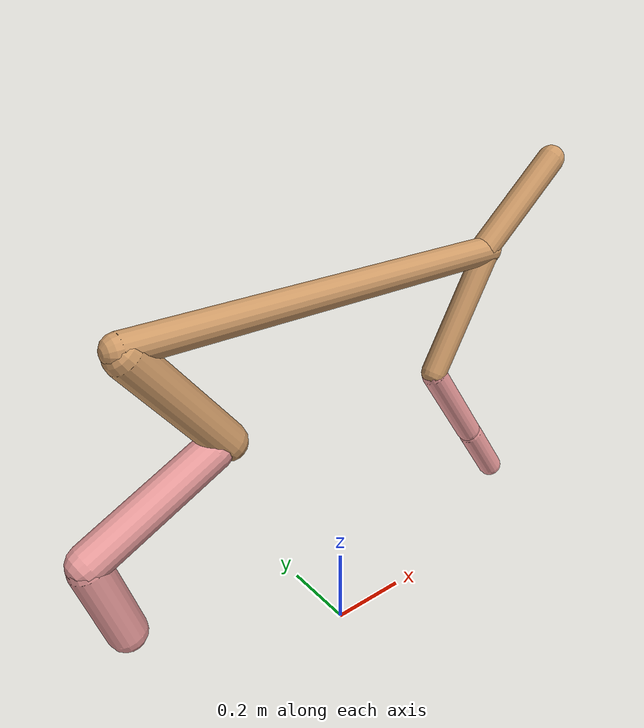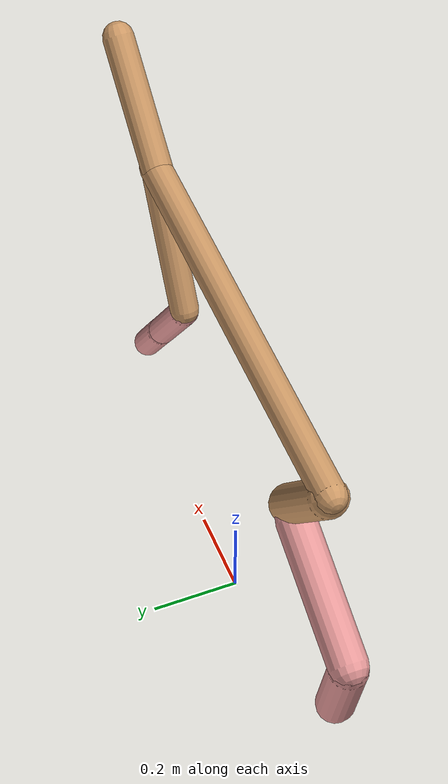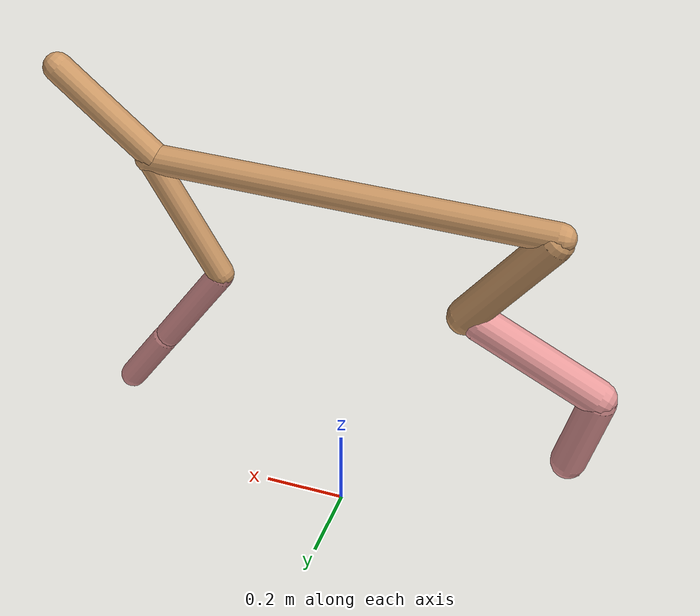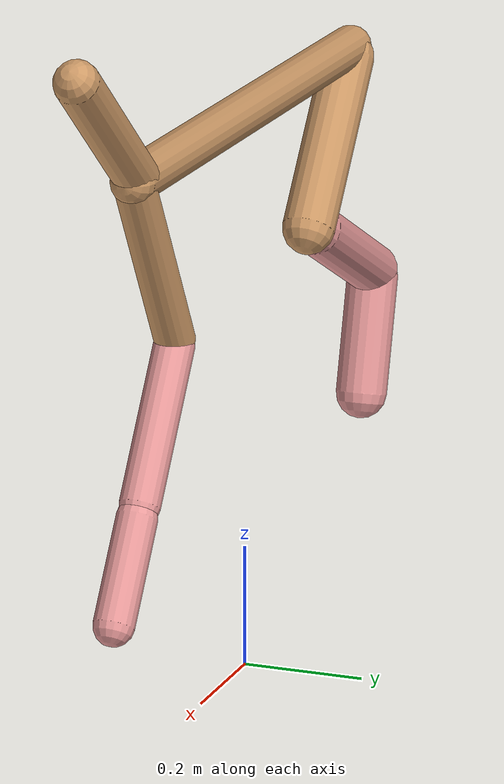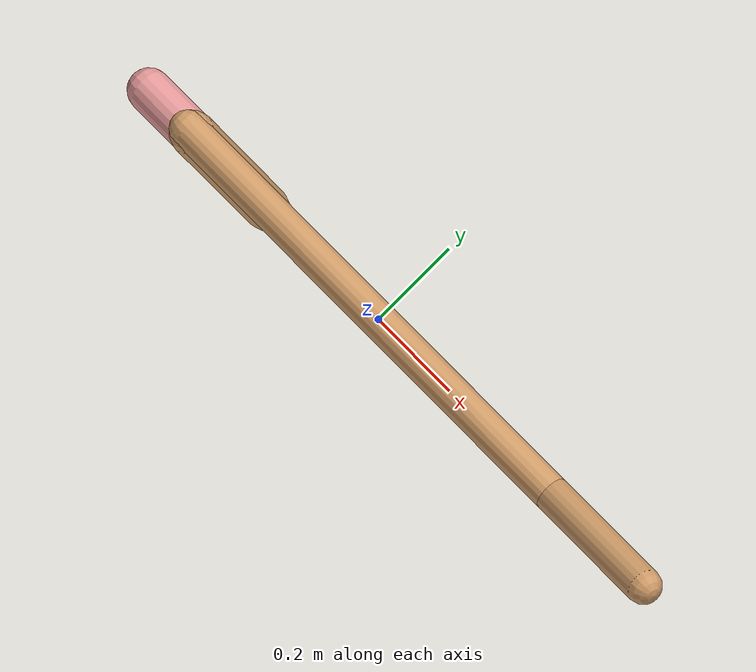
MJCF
<mujoco model="cheetah">
  <compiler angle="radian" coordinate="local" inertiafromgeom="true" settotalmass="14" />
  <default>
    <joint armature=".1" damping=".01" limited="true" solimplimit="0 .8 .03" solreflimit=".02 1" stiffness="8" />
    <geom conaffinity="0" condim="3" contype="1" friction="0.8 .1 .1" rgba="0.8 0.6 .4 1" solimp="0.0 0.8 0.01" solref="0.02 1" />
    <motor ctrllimited="true" ctrlrange="-1 1" />
  </default>
  <size nstack="300000" nuser_geom="1" />
  <option gravity="0 0 -9.81" timestep="0.01" />
  <worldbody>
    <body name="torso" pos="0.0 0.0 0.9187091342825178">
      <joint armature="0" axis="1 0 0" damping="0" limited="false" name="ignorex" pos="0 0 0" stiffness="0" type="slide" />
      <joint armature="0" axis="0 0 1" damping="0" limited="false" name="ignorez" pos="0 0 0" stiffness="0" type="slide" />
      <joint armature="0" axis="0 1 0" damping="0" limited="false" name="ignorey" pos="0 0 0" stiffness="0" type="hinge" />
      <geom fromto="-0.5 0.0 0.0 0.47290440926964916 0.0 0.0" name="torso" size="0.03501972096456425" type="capsule" />
      <geom axisangle="0 1 0 .87" name="head" pos="0.5729044092696491 0.0 0.1" size="0.034886265152725165 0.15" type="capsule" />

      <body name="bthigh" pos="-.5 0 0">
        <joint axis="0 1 0" damping="6" name="bthigh" pos="0 0 0" range="-.52 1.05" stiffness="240" type="hinge" />
        <geom axisangle="0 1 0 -3.8" name="bthigh" pos="0.1070548192652169 0.0 -0.13917126504478197" size="0.04345368770946915 0.15657076390678312" type="capsule" />
        <body name="bshin" pos="0.1741096385304338 0.0 -0.26834253008956394">
          <joint axis="0 1 0" damping="4.5" name="bshin" pos="0 0 0" range="-.785 .785" stiffness="180" type="hinge" />
          <geom axisangle="0 1 0 -2.03" name="bshin" pos="-0.1507060750264144 0.0 -0.0753530375132072" rgba="0.9 0.6 0.6 1" size="0.04345368770946915 0.1619697557656377" type="capsule" />
          <body name="bfoot" pos="-0.3014121500528288 0.0 -0.1507060750264144">
            <joint axis="0 1 0" damping="3" name="bfoot" pos="0 0 0" range="-.4 .785" stiffness="120" type="hinge" />
            <geom axisangle="0 1 0 -.27" name="bfoot" pos="0.032216332262897815 0.0 -0.10416614098336961" rgba="0.9 0.6 0.6 1" size="0.04345368770946915 0.1015010469464663" type="capsule" />
            <inertial mass="10" />
          </body>
        </body>
      </body>
      <body name="fthigh" pos="0.47290440926964916 0.0 0.0">
        <joint axis="0 1 0" damping="4.5" name="fthigh" pos="0 0 0" range="-1.5 0.8" stiffness="180" type="hinge" />
        <geom axisangle="0 1 0 .52" name="fthigh" pos="-0.08533133790696812 0.0 -0.14628229355480246" size="0.0322 0.16342710759369758" type="capsule" />
        <body name="fshin" pos="-0.17066267581393624 0.0 -0.2925645871096049">
          <joint axis="0 1 0" damping="3" name="fshin" pos="0 0 0" range="-1.2 1.1" stiffness="120" type="hinge" />
          <geom axisangle="0 1 0 -.6" name="fshin" pos="0.07919824896355701 0.0 -0.10965911394954048" rgba="0.9 0.6 0.6 1" size="0.0322 0.1302501759769319" type="capsule" />
          <body name="ffoot" pos="0.15839649792711402 0.0 -0.21931822789908095">
            <joint axis="0 1 0" damping="1.5" name="ffoot" pos="0 0 0" range="-3.1 -0.3" stiffness="60" type="hinge" />
            <geom axisangle="0 1 0 -.6" name="ffoot" pos="0.053659836533160296 0.0 -0.08347085682936047" rgba="0.9 0.6 0.6 1" size="0.0322 0.08601426715457768" type="capsule" />
            <inertial mass="10" />
          </body>
        </body>
      </body>
    </body>
  </worldbody>
  <actuator>
    <motor gear="120" joint="bthigh" name="bthigh" />
    <motor gear="90" joint="bshin" name="bshin" />
    <motor gear="60" joint="bfoot" name="bfoot" />
    <motor gear="120" joint="fthigh" name="fthigh" />
    <motor gear="60" joint="fshin" name="fshin" />
    <motor gear="30" joint="ffoot" name="ffoot" />
  </actuator>
</mujoco>
